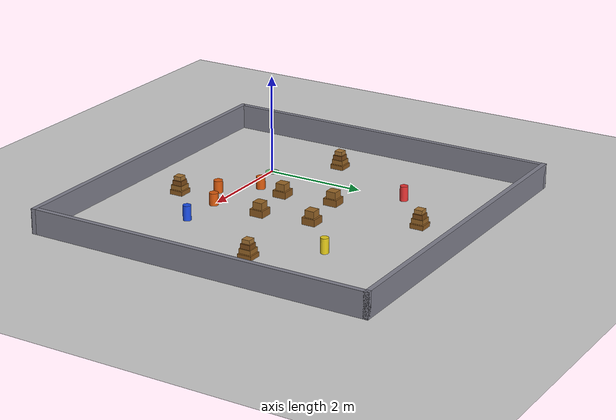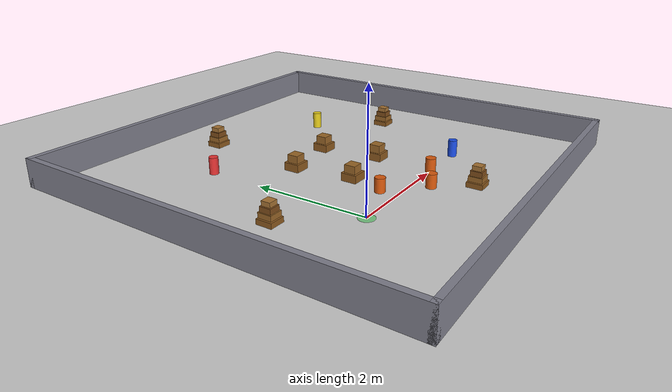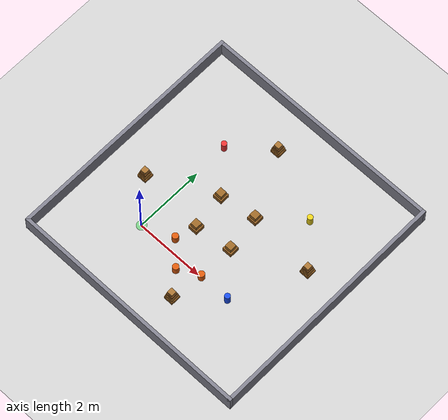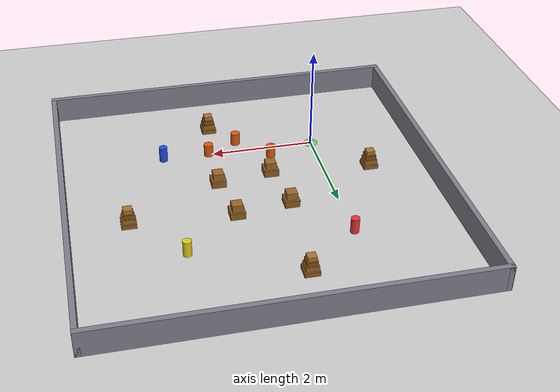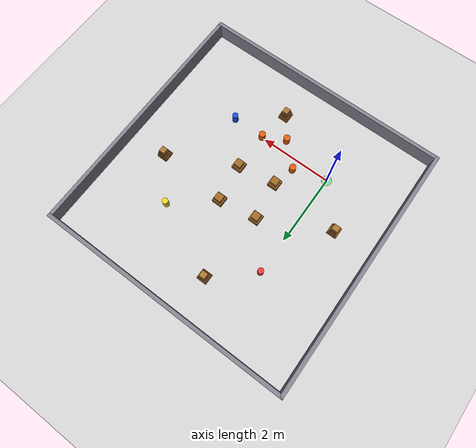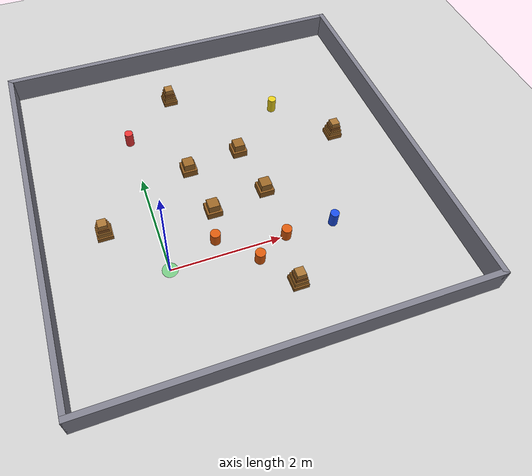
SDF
<?xml version="1.0" ?>
<sdf version="1.11">
  <world name="warehouse_inspection">
    <physics name="1ms_1.5x" type="ode">
      <max_step_size>0.001</max_step_size>
      <real_time_factor>1.5</real_time_factor>
      <real_time_update_rate>1500</real_time_update_rate>
    </physics>
    <plugin filename="gz-sim-physics-system" name="gz::sim::systems::Physics"></plugin>
    <plugin filename="gz-sim-sensors-system" name="gz::sim::systems::Sensors">
      <render_engine>ogre2</render_engine>
    </plugin>
    <plugin filename="gz-sim-scene-broadcaster-system" name="gz::sim::systems::SceneBroadcaster"></plugin>
    <plugin filename="gz-sim-user-commands-system" name="gz::sim::systems::UserCommands"></plugin>

    <light type="directional" name="sun">
      <cast_shadows>true</cast_shadows>
      <pose>0 0 10 0 0 0</pose>
      <diffuse>0.8 0.8 0.8 1</diffuse>
      <specular>0.2 0.2 0.2 1</specular>
      <attenuation>
        <range>1000</range>
        <constant>0.9</constant>
        <linear>0.01</linear>
        <quadratic>0.001</quadratic>
      </attenuation>
      <direction>-0.5 0.1 -0.9</direction>
    </light>

    <model name="ground_plane">
      <static>true</static>
      <link name="link">
        <collision name="collision">
          <geometry>
            <plane>
              <normal>0 0 1</normal>
              <size>100 100</size>
            </plane>
          </geometry>
          <surface>
            <friction>
              <ode>
                <mu>100</mu>
                <mu2>50</mu2>
              </ode>
            </friction>
          </surface>
        </collision>
        <visual name="visual">
          <geometry>
            <plane>
              <normal>0 0 1</normal>
              <size>100 100</size>
            </plane>
          </geometry>
          <material>
            <ambient>0.8 0.8 0.8 1</ambient>
            <diffuse>0.8 0.8 0.8 1</diffuse>
            <specular>0.8 0.8 0.8 1</specular>
          </material>
        </visual>
      </link>
    </model>

    <physics type="ode">
      <real_time_update_rate>1000.0</real_time_update_rate>
      <max_step_size>0.001</max_step_size>
      <real_time_factor>1</real_time_factor>
    </physics>

    <scene>
      <ambient>0.6 0.6 0.6 1</ambient>
      <background>0.7 0.8 0.9 1</background>
      <shadows>true</shadows>
    </scene>

    <!-- ================= Warehouse bay walls ================= -->
    <model name="wall_north">
      <static>true</static>
      <pose>1.5 5.0 0.25 0 0 0</pose>
      <link name="link">
        <collision name="collision">
          <geometry><box><size>7.1 0.1 0.5</size></box></geometry>
        </collision>
        <visual name="visual">
          <geometry><box><size>7.1 0.1 0.5</size></box></geometry>
          <material><ambient>0.5 0.5 0.55 1</ambient><diffuse>0.5 0.5 0.55 1</diffuse></material>
        </visual>
      </link>
    </model>

    <model name="wall_south">
      <static>true</static>
      <pose>1.5 -2.0 0.25 0 0 0</pose>
      <link name="link">
        <collision name="collision">
          <geometry><box><size>7.1 0.1 0.5</size></box></geometry>
        </collision>
        <visual name="visual">
          <geometry><box><size>7.1 0.1 0.5</size></box></geometry>
          <material><ambient>0.5 0.5 0.55 1</ambient><diffuse>0.5 0.5 0.55 1</diffuse></material>
        </visual>
      </link>
    </model>

    <model name="wall_east">
      <static>true</static>
      <pose>5.0 1.5 0.25 0 0 0</pose>
      <link name="link">
        <collision name="collision">
          <geometry><box><size>0.1 7.1 0.5</size></box></geometry>
        </collision>
        <visual name="visual">
          <geometry><box><size>0.1 7.1 0.5</size></box></geometry>
          <material><ambient>0.5 0.5 0.55 1</ambient><diffuse>0.5 0.5 0.55 1</diffuse></material>
        </visual>
      </link>
    </model>

    <model name="wall_west">
      <static>true</static>
      <pose>-2.0 1.5 0.25 0 0 0</pose>
      <link name="link">
        <collision name="collision">
          <geometry><box><size>0.1 7.1 0.5</size></box></geometry>
        </collision>
        <visual name="visual">
          <geometry><box><size>0.1 7.1 0.5</size></box></geometry>
          <material><ambient>0.5 0.5 0.55 1</ambient><diffuse>0.5 0.5 0.55 1</diffuse></material>
        </visual>
      </link>
    </model>

    <model name="pallet_obstacle_1">
      <static>true</static>
      <pose>1.05 0.90 0 0 0 0</pose>
      <link name="link">
        <collision name="collision_bottom">
          <pose>0 0 0.08 0 0 0</pose>
          <geometry><box><size>0.28 0.28 0.14</size></box></geometry>
        </collision>
        <visual name="visual_bottom">
          <pose>0 0 0.08 0 0 0</pose>
          <geometry><box><size>0.28 0.28 0.14</size></box></geometry>
          <material><ambient>0.55 0.35 0.12 1</ambient><diffuse>0.55 0.35 0.12 1</diffuse></material>
        </visual>
        <collision name="collision_top">
          <pose>0 0 0.22 0 0 0</pose>
          <geometry><box><size>0.20 0.20 0.14</size></box></geometry>
        </collision>
        <visual name="visual_top">
          <pose>0 0 0.22 0 0 0</pose>
          <geometry><box><size>0.20 0.20 0.14</size></box></geometry>
          <material><ambient>0.60 0.40 0.15 1</ambient><diffuse>0.60 0.40 0.15 1</diffuse></material>
        </visual>
      </link>
    </model>

    <model name="pallet_obstacle_2">
      <static>true</static>
      <pose>1.95 -0.90 0 0 0 0</pose>
      <link name="link">
        <collision name="collision_l1">
          <pose>0 0 0.05 0 0 0</pose>
          <geometry><box><size>0.28 0.28 0.09</size></box></geometry>
        </collision>
        <visual name="visual_l1">
          <pose>0 0 0.05 0 0 0</pose>
          <geometry><box><size>0.28 0.28 0.09</size></box></geometry>
          <material><ambient>0.55 0.35 0.12 1</ambient><diffuse>0.55 0.35 0.12 1</diffuse></material>
        </visual>
        <collision name="collision_l2">
          <pose>0 0 0.15 0 0 0</pose>
          <geometry><box><size>0.24 0.24 0.09</size></box></geometry>
        </collision>
        <visual name="visual_l2">
          <pose>0 0 0.15 0 0 0</pose>
          <geometry><box><size>0.24 0.24 0.09</size></box></geometry>
          <material><ambient>0.60 0.40 0.15 1</ambient><diffuse>0.60 0.40 0.15 1</diffuse></material>
        </visual>
        <collision name="collision_l3">
          <pose>0 0 0.24 0 0 0</pose>
          <geometry><box><size>0.20 0.20 0.09</size></box></geometry>
        </collision>
        <visual name="visual_l3">
          <pose>0 0 0.24 0 0 0</pose>
          <geometry><box><size>0.20 0.20 0.09</size></box></geometry>
          <material><ambient>0.50 0.30 0.10 1</ambient><diffuse>0.50 0.30 0.10 1</diffuse></material>
        </visual>
        <collision name="collision_l4">
          <pose>0 0 0.33 0 0 0</pose>
          <geometry><box><size>0.16 0.16 0.08</size></box></geometry>
        </collision>
        <visual name="visual_l4">
          <pose>0 0 0.33 0 0 0</pose>
          <geometry><box><size>0.16 0.16 0.08</size></box></geometry>
          <material><ambient>0.65 0.45 0.20 1</ambient><diffuse>0.65 0.45 0.20 1</diffuse></material>
        </visual>
      </link>
    </model>

    <model name="pallet_obstacle_3">
      <static>true</static>
      <pose>2.10 1.05 0 0 0 0</pose>
      <link name="link">
        <collision name="collision_bottom">
          <pose>0 0 0.08 0 0 0</pose>
          <geometry><box><size>0.28 0.28 0.14</size></box></geometry>
        </collision>
        <visual name="visual_bottom">
          <pose>0 0 0.08 0 0 0</pose>
          <geometry><box><size>0.28 0.28 0.14</size></box></geometry>
          <material><ambient>0.55 0.35 0.12 1</ambient><diffuse>0.55 0.35 0.12 1</diffuse></material>
        </visual>
        <collision name="collision_top">
          <pose>0 0 0.22 0 0 0</pose>
          <geometry><box><size>0.20 0.20 0.14</size></box></geometry>
        </collision>
        <visual name="visual_top">
          <pose>0 0 0.22 0 0 0</pose>
          <geometry><box><size>0.20 0.20 0.14</size></box></geometry>
          <material><ambient>0.60 0.40 0.15 1</ambient><diffuse>0.60 0.40 0.15 1</diffuse></material>
        </visual>
      </link>
    </model>

    <model name="pallet_obstacle_4">
      <static>true</static>
      <pose>3.90 1.95 0 0 0 0</pose>
      <link name="link">
        <collision name="collision_l1">
          <pose>0 0 0.05 0 0 0</pose>
          <geometry><box><size>0.28 0.28 0.09</size></box></geometry>
        </collision>
        <visual name="visual_l1">
          <pose>0 0 0.05 0 0 0</pose>
          <geometry><box><size>0.28 0.28 0.09</size></box></geometry>
          <material><ambient>0.55 0.35 0.12 1</ambient><diffuse>0.55 0.35 0.12 1</diffuse></material>
        </visual>
        <collision name="collision_l2">
          <pose>0 0 0.15 0 0 0</pose>
          <geometry><box><size>0.24 0.24 0.09</size></box></geometry>
        </collision>
        <visual name="visual_l2">
          <pose>0 0 0.15 0 0 0</pose>
          <geometry><box><size>0.24 0.24 0.09</size></box></geometry>
          <material><ambient>0.60 0.40 0.15 1</ambient><diffuse>0.60 0.40 0.15 1</diffuse></material>
        </visual>
        <collision name="collision_l3">
          <pose>0 0 0.24 0 0 0</pose>
          <geometry><box><size>0.20 0.20 0.09</size></box></geometry>
        </collision>
        <visual name="visual_l3">
          <pose>0 0 0.24 0 0 0</pose>
          <geometry><box><size>0.20 0.20 0.09</size></box></geometry>
          <material><ambient>0.50 0.30 0.10 1</ambient><diffuse>0.50 0.30 0.10 1</diffuse></material>
        </visual>
        <collision name="collision_l4">
          <pose>0 0 0.33 0 0 0</pose>
          <geometry><box><size>0.16 0.16 0.08</size></box></geometry>
        </collision>
        <visual name="visual_l4">
          <pose>0 0 0.33 0 0 0</pose>
          <geometry><box><size>0.16 0.16 0.08</size></box></geometry>
          <material><ambient>0.65 0.45 0.20 1</ambient><diffuse>0.65 0.45 0.20 1</diffuse></material>
        </visual>
      </link>
    </model>

    <model name="pallet_obstacle_5">
      <static>true</static>
      <pose>1.95 2.10 0 0 0 0</pose>
      <link name="link">
        <collision name="collision_bottom">
          <pose>0 0 0.08 0 0 0</pose>
          <geometry><box><size>0.28 0.28 0.14</size></box></geometry>
        </collision>
        <visual name="visual_bottom">
          <pose>0 0 0.08 0 0 0</pose>
          <geometry><box><size>0.28 0.28 0.14</size></box></geometry>
          <material><ambient>0.55 0.35 0.12 1</ambient><diffuse>0.55 0.35 0.12 1</diffuse></material>
        </visual>
        <collision name="collision_top">
          <pose>0 0 0.22 0 0 0</pose>
          <geometry><box><size>0.20 0.20 0.14</size></box></geometry>
        </collision>
        <visual name="visual_top">
          <pose>0 0 0.22 0 0 0</pose>
          <geometry><box><size>0.20 0.20 0.14</size></box></geometry>
          <material><ambient>0.60 0.40 0.15 1</ambient><diffuse>0.60 0.40 0.15 1</diffuse></material>
        </visual>
      </link>
    </model>

    <model name="pallet_obstacle_6">
      <static>true</static>
      <pose>1.05 3.90 0 0 0 0</pose>
      <link name="link">
        <collision name="collision_l1">
          <pose>0 0 0.05 0 0 0</pose>
          <geometry><box><size>0.28 0.28 0.09</size></box></geometry>
        </collision>
        <visual name="visual_l1">
          <pose>0 0 0.05 0 0 0</pose>
          <geometry><box><size>0.28 0.28 0.09</size></box></geometry>
          <material><ambient>0.55 0.35 0.12 1</ambient><diffuse>0.55 0.35 0.12 1</diffuse></material>
        </visual>
        <collision name="collision_l2">
          <pose>0 0 0.15 0 0 0</pose>
          <geometry><box><size>0.24 0.24 0.09</size></box></geometry>
        </collision>
        <visual name="visual_l2">
          <pose>0 0 0.15 0 0 0</pose>
          <geometry><box><size>0.24 0.24 0.09</size></box></geometry>
          <material><ambient>0.60 0.40 0.15 1</ambient><diffuse>0.60 0.40 0.15 1</diffuse></material>
        </visual>
        <collision name="collision_l3">
          <pose>0 0 0.24 0 0 0</pose>
          <geometry><box><size>0.20 0.20 0.09</size></box></geometry>
        </collision>
        <visual name="visual_l3">
          <pose>0 0 0.24 0 0 0</pose>
          <geometry><box><size>0.20 0.20 0.09</size></box></geometry>
          <material><ambient>0.50 0.30 0.10 1</ambient><diffuse>0.50 0.30 0.10 1</diffuse></material>
        </visual>
        <collision name="collision_l4">
          <pose>0 0 0.33 0 0 0</pose>
          <geometry><box><size>0.16 0.16 0.08</size></box></geometry>
        </collision>
        <visual name="visual_l4">
          <pose>0 0 0.33 0 0 0</pose>
          <geometry><box><size>0.16 0.16 0.08</size></box></geometry>
          <material><ambient>0.65 0.45 0.20 1</ambient><diffuse>0.65 0.45 0.20 1</diffuse></material>
        </visual>
      </link>
    </model>

    <model name="pallet_obstacle_7">
      <static>true</static>
      <pose>0.90 1.95 0 0 0 0</pose>
      <link name="link">
        <collision name="collision_bottom">
          <pose>0 0 0.08 0 0 0</pose>
          <geometry><box><size>0.28 0.28 0.14</size></box></geometry>
        </collision>
        <visual name="visual_bottom">
          <pose>0 0 0.08 0 0 0</pose>
          <geometry><box><size>0.28 0.28 0.14</size></box></geometry>
          <material><ambient>0.55 0.35 0.12 1</ambient><diffuse>0.55 0.35 0.12 1</diffuse></material>
        </visual>
        <collision name="collision_top">
          <pose>0 0 0.22 0 0 0</pose>
          <geometry><box><size>0.20 0.20 0.14</size></box></geometry>
        </collision>
        <visual name="visual_top">
          <pose>0 0 0.22 0 0 0</pose>
          <geometry><box><size>0.20 0.20 0.14</size></box></geometry>
          <material><ambient>0.60 0.40 0.15 1</ambient><diffuse>0.60 0.40 0.15 1</diffuse></material>
        </visual>
      </link>
    </model>

    <model name="pallet_obstacle_8">
      <static>true</static>
      <pose>-0.90 1.05 0 0 0 0</pose>
      <link name="link">
        <collision name="collision_l1">
          <pose>0 0 0.05 0 0 0</pose>
          <geometry><box><size>0.28 0.28 0.09</size></box></geometry>
        </collision>
        <visual name="visual_l1">
          <pose>0 0 0.05 0 0 0</pose>
          <geometry><box><size>0.28 0.28 0.09</size></box></geometry>
          <material><ambient>0.55 0.35 0.12 1</ambient><diffuse>0.55 0.35 0.12 1</diffuse></material>
        </visual>
        <collision name="collision_l2">
          <pose>0 0 0.15 0 0 0</pose>
          <geometry><box><size>0.24 0.24 0.09</size></box></geometry>
        </collision>
        <visual name="visual_l2">
          <pose>0 0 0.15 0 0 0</pose>
          <geometry><box><size>0.24 0.24 0.09</size></box></geometry>
          <material><ambient>0.60 0.40 0.15 1</ambient><diffuse>0.60 0.40 0.15 1</diffuse></material>
        </visual>
        <collision name="collision_l3">
          <pose>0 0 0.24 0 0 0</pose>
          <geometry><box><size>0.20 0.20 0.09</size></box></geometry>
        </collision>
        <visual name="visual_l3">
          <pose>0 0 0.24 0 0 0</pose>
          <geometry><box><size>0.20 0.20 0.09</size></box></geometry>
          <material><ambient>0.50 0.30 0.10 1</ambient><diffuse>0.50 0.30 0.10 1</diffuse></material>
        </visual>
        <collision name="collision_l4">
          <pose>0 0 0.33 0 0 0</pose>
          <geometry><box><size>0.16 0.16 0.08</size></box></geometry>
        </collision>
        <visual name="visual_l4">
          <pose>0 0 0.33 0 0 0</pose>
          <geometry><box><size>0.16 0.16 0.08</size></box></geometry>
          <material><ambient>0.65 0.45 0.20 1</ambient><diffuse>0.65 0.45 0.20 1</diffuse></material>
        </visual>
      </link>
    </model>

    <model name="path_pylon_left">
      <static>true</static>
      <pose>0.90 0.30 0.125 0 0 0</pose>
      <link name="link">
        <collision name="collision">
          <geometry><cylinder><radius>0.09</radius><length>0.25</length></cylinder></geometry>
        </collision>
        <visual name="visual">
          <geometry><cylinder><radius>0.09</radius><length>0.25</length></cylinder></geometry>
          <material><ambient>0.85 0.35 0.05 1</ambient><diffuse>0.85 0.35 0.05 1</diffuse></material>
        </visual>
      </link>
    </model>

    <model name="path_pylon_right">
      <static>true</static>
      <pose>1.50 -0.30 0.125 0 0 0</pose>
      <link name="link">
        <collision name="collision">
          <geometry><cylinder><radius>0.09</radius><length>0.25</length></cylinder></geometry>
        </collision>
        <visual name="visual">
          <geometry><cylinder><radius>0.09</radius><length>0.25</length></cylinder></geometry>
          <material><ambient>0.85 0.35 0.05 1</ambient><diffuse>0.85 0.35 0.05 1</diffuse></material>
        </visual>
      </link>
    </model>

    <model name="path_pylon_center">
      <static>true</static>
      <pose>2.10 0.0 0.125 0 0 0</pose>
      <link name="link">
        <collision name="collision">
          <geometry><cylinder><radius>0.09</radius><length>0.25</length></cylinder></geometry>
        </collision>
        <visual name="visual">
          <geometry><cylinder><radius>0.09</radius><length>0.25</length></cylinder></geometry>
          <material><ambient>0.85 0.35 0.05 1</ambient><diffuse>0.85 0.35 0.05 1</diffuse></material>
        </visual>
      </link>
    </model>

    <!-- ================= Inspection checkpoint markers (visual-only, no collision) ================= -->
    <model name="checkpoint_marker_1">
      <static>true</static>
      <pose>3.0 0.0 0.15 0 0 0</pose>
      <link name="link">
        <visual name="visual">
          <geometry><cylinder><radius>0.08</radius><length>0.3</length></cylinder></geometry>
          <material><ambient>0.1 0.3 0.9 1</ambient><diffuse>0.1 0.3 0.9 1</diffuse></material>
        </visual>
      </link>
    </model>

    <model name="checkpoint_marker_2">
      <static>true</static>
      <pose>3.0 3.0 0.15 0 0 0</pose>
      <link name="link">
        <visual name="visual">
          <geometry><cylinder><radius>0.08</radius><length>0.3</length></cylinder></geometry>
          <material><ambient>0.9 0.8 0.1 1</ambient><diffuse>0.9 0.8 0.1 1</diffuse></material>
        </visual>
      </link>
    </model>

    <model name="checkpoint_marker_3">
      <static>true</static>
      <pose>0.0 3.0 0.15 0 0 0</pose>
      <link name="link">
        <visual name="visual">
          <geometry><cylinder><radius>0.08</radius><length>0.3</length></cylinder></geometry>
          <material><ambient>0.9 0.2 0.2 1</ambient><diffuse>0.9 0.2 0.2 1</diffuse></material>
        </visual>
      </link>
    </model>

    <model name="charging_dock_marker">
      <static>true</static>
      <pose>0.0 0.0 0.002 0 0 0</pose>
      <link name="link">
        <visual name="visual">
          <geometry><cylinder><radius>0.14</radius><length>0.004</length></cylinder></geometry>
          <material><ambient>0.1 0.8 0.2 1</ambient><diffuse>0.1 0.8 0.2 1</diffuse></material>
          <transparency>0.55</transparency>
        </visual>
      </link>
    </model>
  </world>
</sdf>
